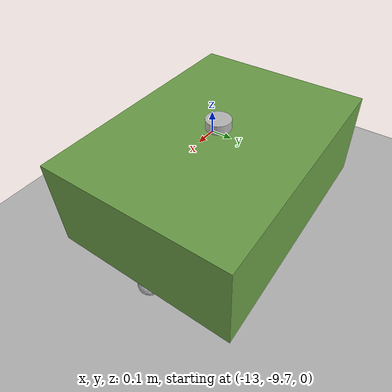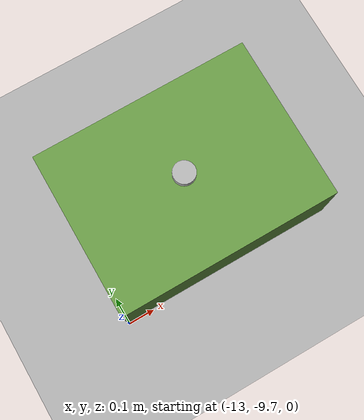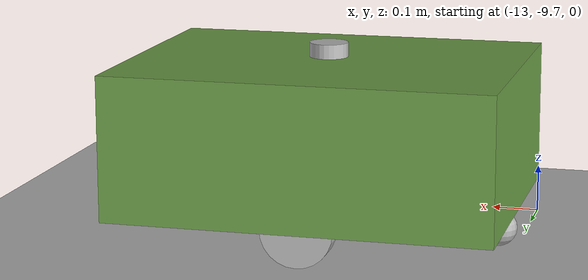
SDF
<sdf version="1.8">
 <world name="warehouse_distinct">
  <model name="ground_plane">
   <static>true</static>
   <link name="link">
    <collision name="collision">
     <geometry><plane><normal>0 0 1</normal><size>40.0 30.0</size></plane></geometry>
     <surface><friction><ode><mu>0.8</mu><mu2>0.8</mu2></ode></friction></surface>
    </collision>
    <visual name="visual">
     <geometry><plane><normal>0 0 1</normal><size>40.0 30.0</size></plane></geometry>
     <material><ambient>0.7 0.7 0.7 1</ambient><diffuse>0.7 0.7 0.7 1</diffuse></material>
    </visual>
   </link>
  </model>
  <model name="robot_43">
   <pose>-12.6 -9.4 0 0 0 0.0</pose>
   <link name="chassis">
    <pose>0 0 0.225 0 0 0</pose>
    <inertial>
     <mass>50.0</mass>
     <inertia><ixx>1.875</ixx><iyy>3.042</iyy><izz>4.167</izz><ixy>0</ixy><ixz>0</ixz><iyz>0</iyz></inertia>
    </inertial>
    <visual name="v">
     <geometry><box><size>0.8 0.6 0.3</size></box></geometry>
     <material><ambient>0.42 0.62 0.28 1</ambient><diffuse>0.42 0.62 0.28 1</diffuse></material>
    </visual>
    <collision name="c"><geometry><box><size>0.8 0.6 0.3</size></box></geometry></collision>
   </link>
   <link name="left_wheel">
    <pose>0 0.25 0.075 1.5708 0 0</pose>
    <inertial>
     <mass>1.0</mass>
     <inertia><ixx>0.00154</ixx><iyy>0.00154</iyy><izz>0.00281</izz><ixy>0</ixy><ixz>0</ixz><iyz>0</iyz></inertia>
    </inertial>
    <visual name="v">
     <geometry><cylinder><radius>0.075</radius><length>0.04</length></cylinder></geometry>
    </visual>
    <collision name="c">
     <geometry><cylinder><radius>0.075</radius><length>0.04</length></cylinder></geometry>
     <surface><friction><ode><mu>1.0</mu><mu2>1.0</mu2></ode></friction></surface>
    </collision>
   </link>
   <joint name="left_wheel_joint" type="revolute">
    <parent>chassis</parent>
    <child>left_wheel</child>
    <axis><xyz>0 0 1</xyz><limit><lower>-1e16</lower><upper>1e16</upper></limit></axis>
   </joint>
   <link name="right_wheel">
    <pose>0 -0.25 0.075 1.5708 0 0</pose>
    <inertial>
     <mass>1.0</mass>
     <inertia><ixx>0.00154</ixx><iyy>0.00154</iyy><izz>0.00281</izz><ixy>0</ixy><ixz>0</ixz><iyz>0</iyz></inertia>
    </inertial>
    <visual name="v">
     <geometry><cylinder><radius>0.075</radius><length>0.04</length></cylinder></geometry>
    </visual>
    <collision name="c">
     <geometry><cylinder><radius>0.075</radius><length>0.04</length></cylinder></geometry>
     <surface><friction><ode><mu>1.0</mu><mu2>1.0</mu2></ode></friction></surface>
    </collision>
   </link>
   <joint name="right_wheel_joint" type="revolute">
    <parent>chassis</parent>
    <child>right_wheel</child>
    <axis><xyz>0 0 1</xyz><limit><lower>-1e16</lower><upper>1e16</upper></limit></axis>
   </joint>
   <link name="front_caster">
    <pose>0.3625 0 0.0375 0 0 0</pose>
    <inertial>
     <mass>0.5</mass>
     <inertia>
      <ixx>0.000281</ixx>
      <iyy>0.000281</iyy>
      <izz>0.000281</izz>
      <ixy>0</ixy>
      <ixz>0</ixz>
      <iyz>0</iyz>
     </inertia>
    </inertial>
    <visual name="v"><geometry><sphere><radius>0.0375</radius></sphere></geometry></visual>
    <collision name="c">
     <geometry><sphere><radius>0.0375</radius></sphere></geometry>
     <surface><friction><ode><mu>0.01</mu><mu2>0.01</mu2></ode></friction></surface>
    </collision>
   </link>
   <joint name="fc_joint" type="ball"><parent>chassis</parent><child>front_caster</child></joint>
   <link name="rear_caster">
    <pose>-0.3625 0 0.0375 0 0 0</pose>
    <inertial>
     <mass>0.5</mass>
     <inertia>
      <ixx>0.000281</ixx>
      <iyy>0.000281</iyy>
      <izz>0.000281</izz>
      <ixy>0</ixy>
      <ixz>0</ixz>
      <iyz>0</iyz>
     </inertia>
    </inertial>
    <visual name="v"><geometry><sphere><radius>0.0375</radius></sphere></geometry></visual>
    <collision name="c">
     <geometry><sphere><radius>0.0375</radius></sphere></geometry>
     <surface><friction><ode><mu>0.01</mu><mu2>0.01</mu2></ode></friction></surface>
    </collision>
   </link>
   <joint name="rc_joint" type="ball"><parent>chassis</parent><child>rear_caster</child></joint>
   <plugin filename="gz-sim-diff-drive-system" name="gz::sim::systems::DiffDrive">
    <left_joint>left_wheel_joint</left_joint>
    <right_joint>right_wheel_joint</right_joint>
    <wheel_separation>0.5</wheel_separation>
    <wheel_radius>0.075</wheel_radius>
    <max_linear_acceleration>0.8</max_linear_acceleration>
    <max_angular_velocity>2.5</max_angular_velocity>
    <topic>/robot_43/cmd_vel</topic>
    <odom_topic>/robot_43/odom</odom_topic>
    <tf_topic>/robot_43/tf</tf_topic>
    <frame_id>odom</frame_id>
    <child_frame_id>chassis</child_frame_id>
    <odom_publish_frequency>15</odom_publish_frequency>
   </plugin>
   <link name="lidar_link">
    <pose>0 0 0.395 0 0 0</pose>
    <inertial>
     <mass>0.1</mass>
     <inertia>
      <ixx>0.000047</ixx>
      <iyy>0.000047</iyy>
      <izz>0.00008</izz>
      <ixy>0</ixy>
      <ixz>0</ixz>
      <iyz>0</iyz>
     </inertia>
    </inertial>
    <visual name="v"><geometry><cylinder><radius>0.04</radius><length>0.03</length></cylinder></geometry></visual>
    <collision name="c">
     <geometry><cylinder><radius>0.04</radius><length>0.03</length></cylinder></geometry>
    </collision>
    <sensor name="lidar" type="gpu_lidar">
     <always_on>true</always_on>
     <update_rate>10</update_rate>
     <visualize>false</visualize>
     <topic>/robot_43/lidar</topic>
     <ray>
      <scan>
       <horizontal>
        <samples>360</samples>
        <resolution>1</resolution>
        <min_angle>-3.141593</min_angle>
        <max_angle>3.141593</max_angle>
       </horizontal>
      </scan>
      <range><min>0.08</min><max>12.0</max><resolution>0.01</resolution></range>
      <noise><type>gaussian</type><mean>0.0</mean><stddev>0.03</stddev></noise>
     </ray>
    </sensor>
   </link>
   <joint name="lidar_joint" type="fixed"><parent>chassis</parent><child>lidar_link</child></joint>
   <plugin filename="gz-sim-joint-state-publisher-system" name="gz::sim::systems::JointStatePublisher"/>
  </model>
 </world>
</sdf>
